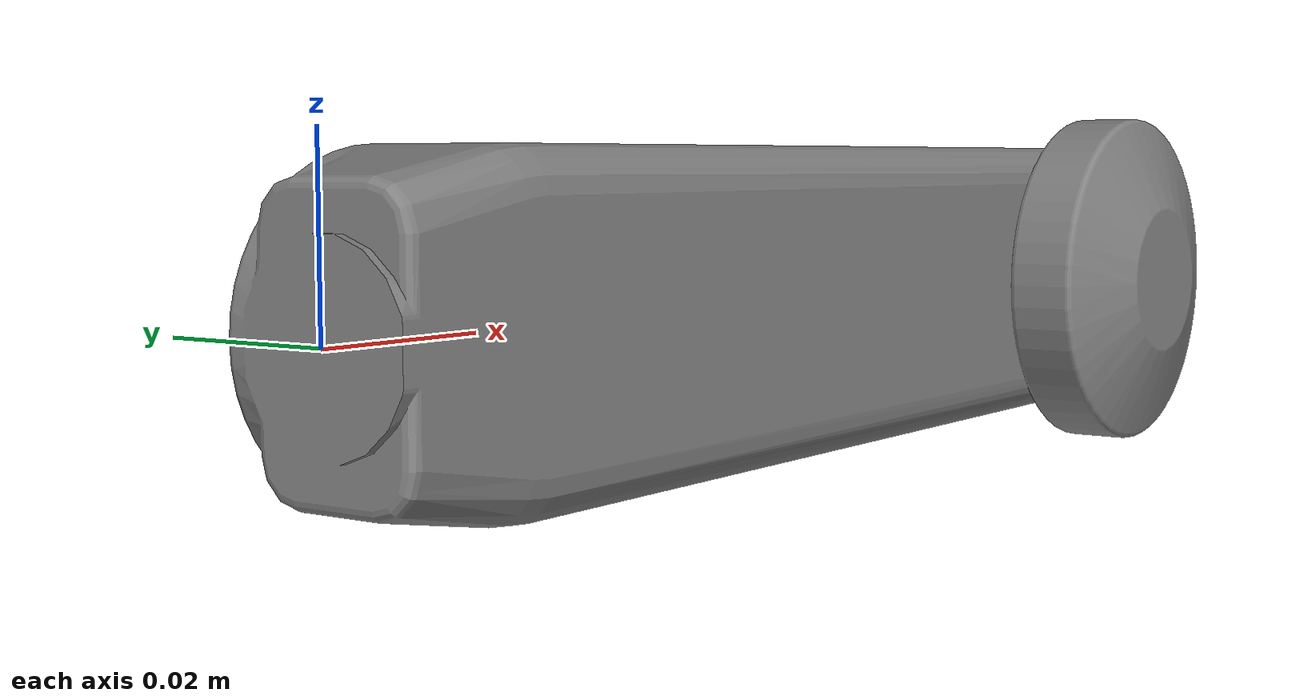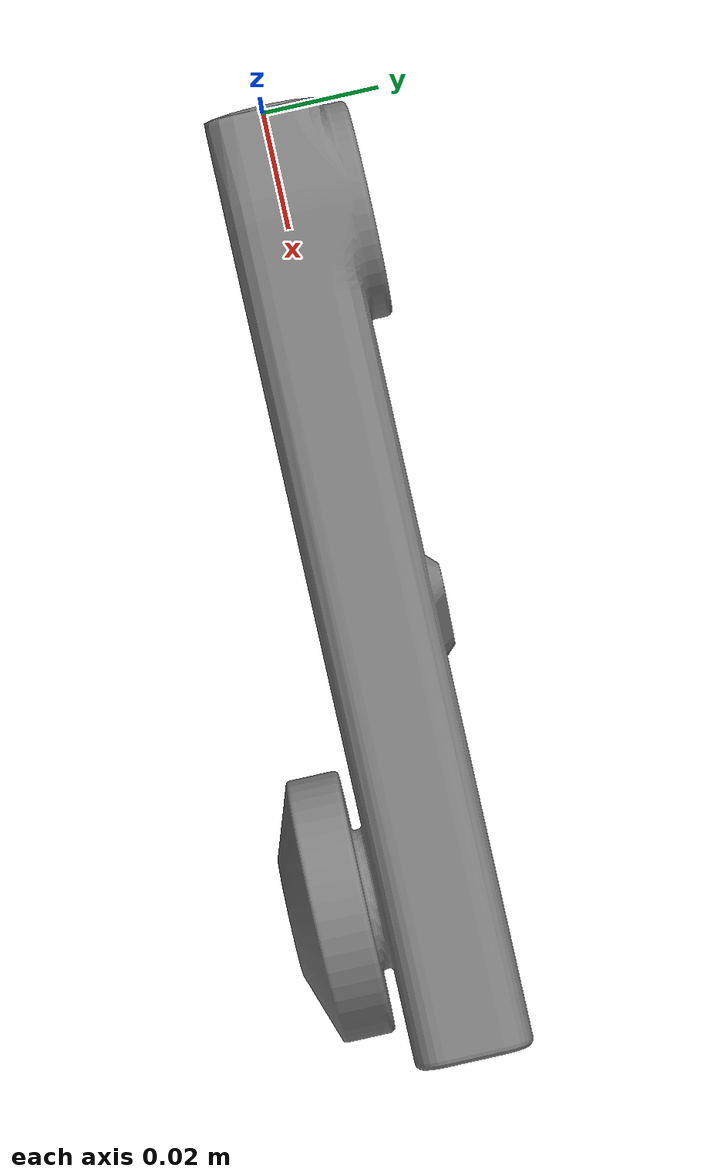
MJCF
<mujoco model="solo12_hip_fe_hl">
  <default>
    <default class="visual">
      <geom group="2" type="mesh" contype="0" conaffinity="0"/>
    </default>
    <default class="collision">
      <geom group="3" type="mesh"/>
    </default>
  </default>
  <asset>
    <mesh file="solo12_hip_fe_hl.obj"/>
    <mesh file="solo12_hip_fe_hl_collision_0.obj"/>
    <mesh file="solo12_hip_fe_hl_collision_1.obj"/>
    <mesh file="solo12_hip_fe_hl_collision_2.obj"/>
    <mesh file="solo12_hip_fe_hl_collision_3.obj"/>
    <mesh file="solo12_hip_fe_hl_collision_4.obj"/>
    <mesh file="solo12_hip_fe_hl_collision_5.obj"/>
  </asset>
  <worldbody>
    <body name="solo12_hip_fe_hl">
      <geom mesh="solo12_hip_fe_hl" class="visual"/>
      <geom mesh="solo12_hip_fe_hl_collision_0" class="collision"/>
      <geom mesh="solo12_hip_fe_hl_collision_1" class="collision"/>
      <geom mesh="solo12_hip_fe_hl_collision_2" class="collision"/>
      <geom mesh="solo12_hip_fe_hl_collision_3" class="collision"/>
      <geom mesh="solo12_hip_fe_hl_collision_4" class="collision"/>
      <geom mesh="solo12_hip_fe_hl_collision_5" class="collision"/>
    </body>
  </worldbody>
</mujoco>
